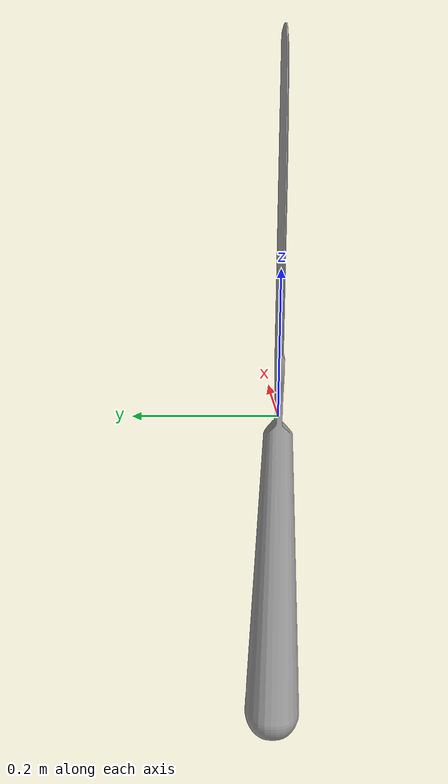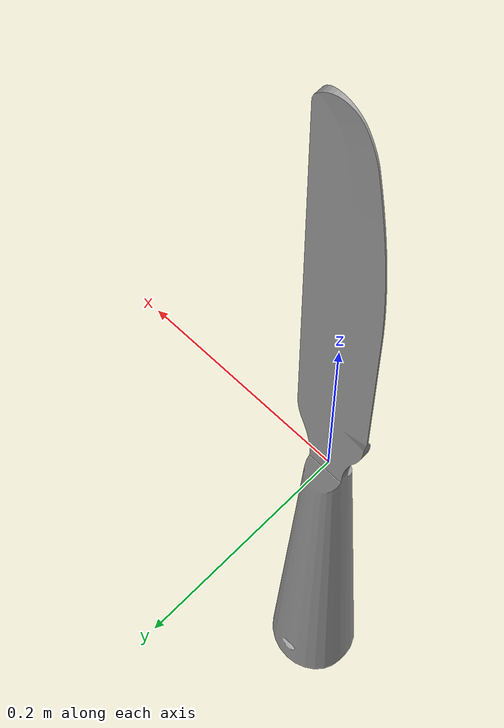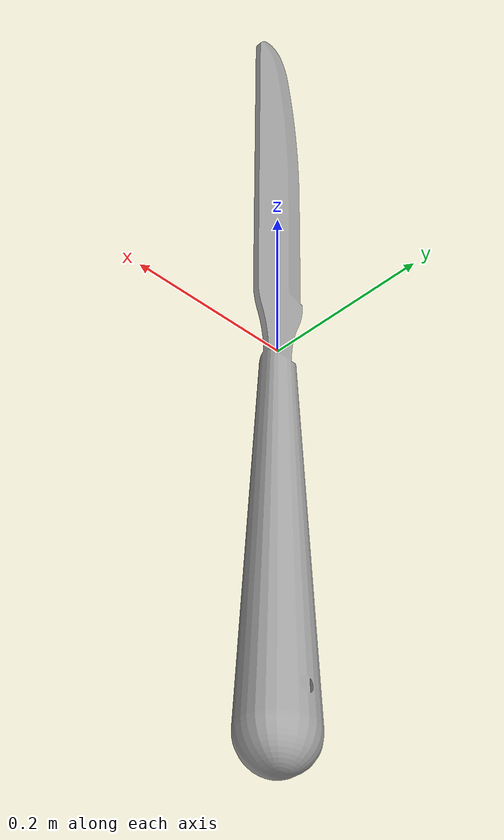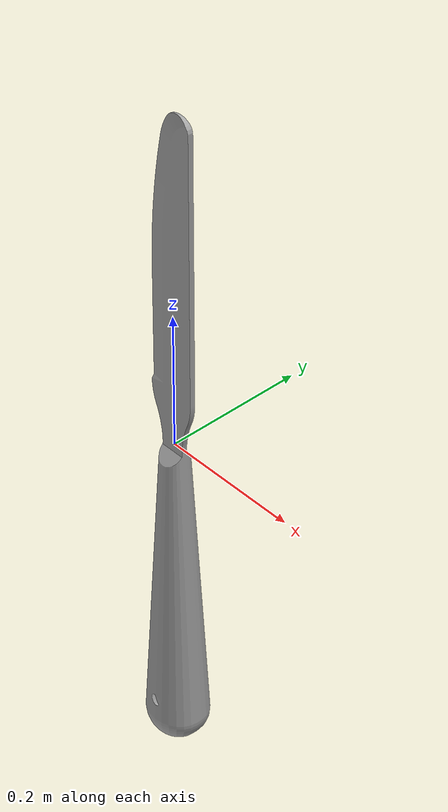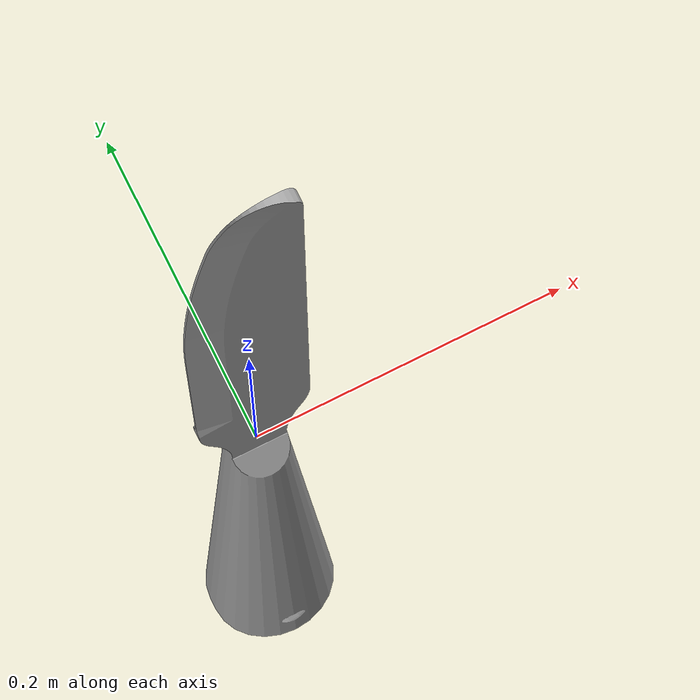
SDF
<?xml version="1.0" ?>
<sdf version="1.5">
  <model name='cutlery8'>
    <pose>0 0 0 0 0 0</pose>
    <static>1</static>
    <link name='body'>
      <collision name="cutlery8-coll">
        <pose>0 0 -0.5 0 0 0</pose>
        <geometry>
          <mesh>
            <uri>model://cutlery8/meshes/cutlery8.dae</uri>
          </mesh>
        </geometry>
      </collision>
      <visual name='cutlery8'>
        <cast_shadows>1</cast_shadows>
        <pose>0 0 -0.5 0 0 0</pose>
        <geometry>
          <mesh>
            <uri>model://cutlery8/meshes/cutlery8.dae</uri>
          </mesh>
        </geometry>
      </visual>
      <velocity_decay>
        <linear>0</linear>
        <angular>0</angular>
      </velocity_decay>
      <self_collide>0</self_collide>
      <kinematic>0</kinematic>
      <gravity>1</gravity>
    </link>
  </model>

</sdf>
